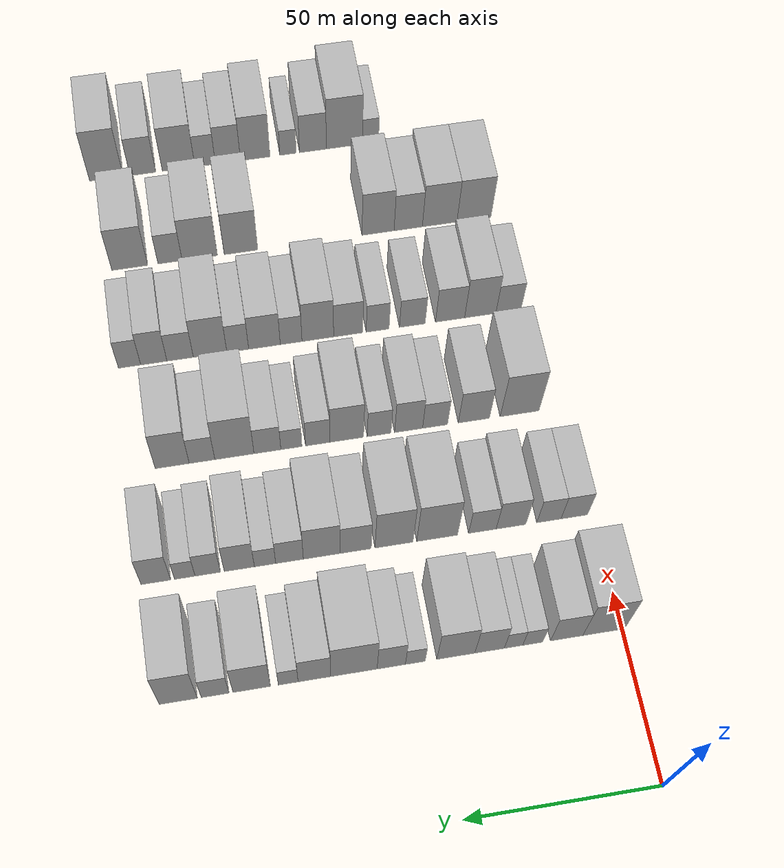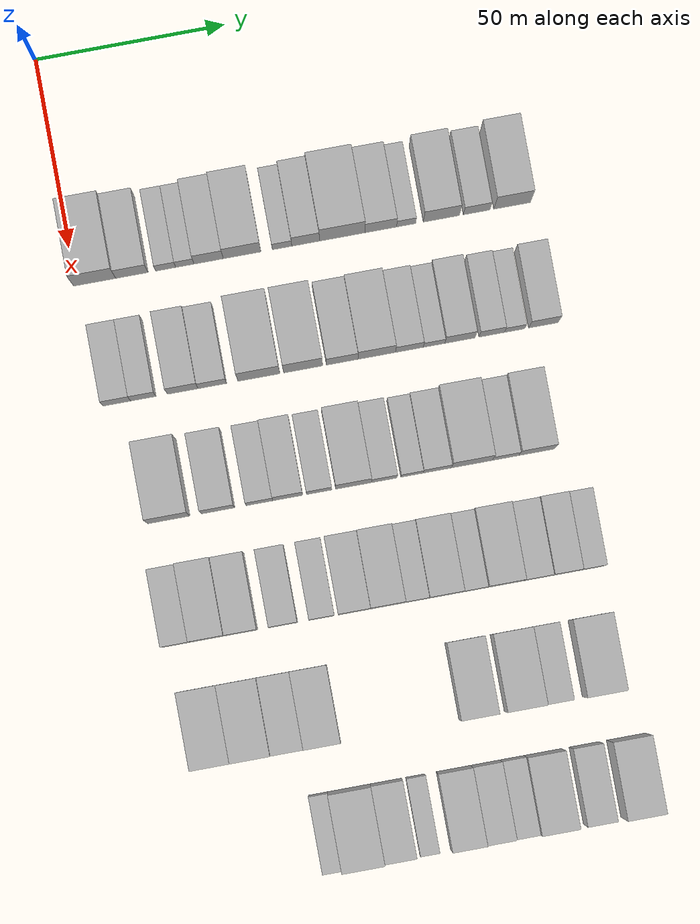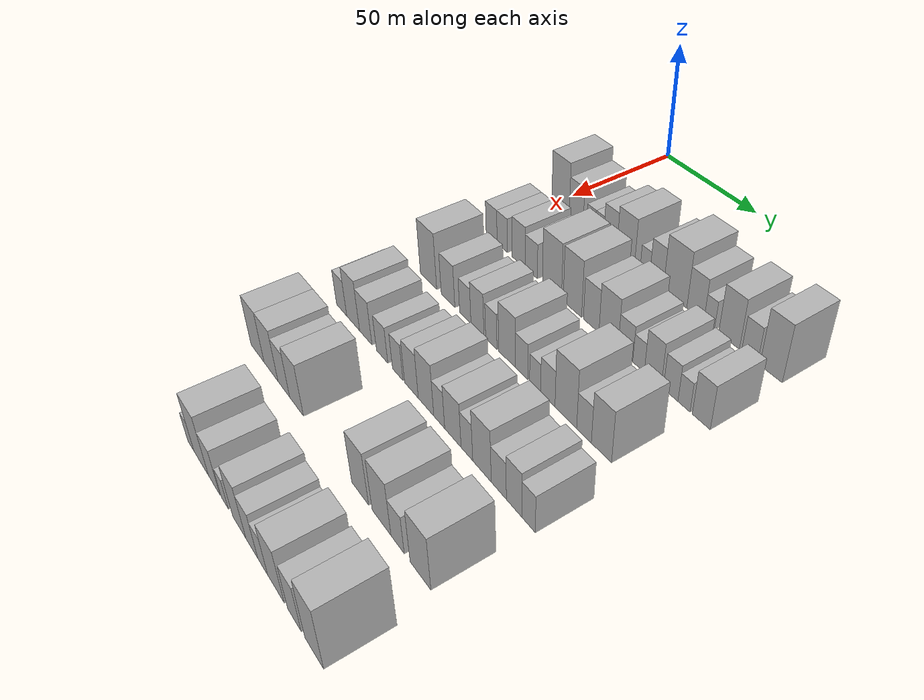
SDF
<sdf version="1.6">
 <world name="default">
  <model name="building_59">
   <static>1</static>
   <pose>50.0000 4.9649 0 0.000000 0.000000 0.000000</pose>
   <link name="link">
    <pose>0 0 12.00 0 0 0</pose>
    <collision name="collision"><geometry><box><size>20.0000 11.0637 24.0000</size></box></geometry></collision>
    <visual name="visual">
     <cast_shadows>0</cast_shadows>
     <geometry><box><size>20.0000 11.0637 24.0000</size></box></geometry>
     <material>
      <script>
       <uri>model://HANNAS_wall/materials/scripts</uri>
       <uri>model://HANNAS_wall/materials/textures</uri>
       <name>vrc/HANNAS_wall</name>
      </script>
     </material>
    </visual>
   </link>
  </model>
  <model name="building_60">
   <static>1</static>
   <pose>50.0000 14.7517 0 0.000000 0.000000 0.000000</pose>
   <link name="link">
    <pose>0 0 9.00 0 0 0</pose>
    <collision name="collision"><geometry><box><size>20.0000 8.5100 18.0000</size></box></geometry></collision>
    <visual name="visual">
     <cast_shadows>0</cast_shadows>
     <geometry><box><size>20.0000 8.5100 18.0000</size></box></geometry>
     <material>
      <script>
       <uri>model://HANNAS_wall/materials/scripts</uri>
       <uri>model://HANNAS_wall/materials/textures</uri>
       <name>vrc/HANNAS_wall</name>
      </script>
     </material>
    </visual>
   </link>
  </model>
  <model name="building_61">
   <static>1</static>
   <pose>50.0000 23.6273 0 0.000000 0.000000 0.000000</pose>
   <link name="link">
    <pose>0 0 6.00 0 0 0</pose>
    <collision name="collision"><geometry><box><size>20.0000 5.2412 12.0000</size></box></geometry></collision>
    <visual name="visual">
     <cast_shadows>0</cast_shadows>
     <geometry><box><size>20.0000 5.2412 12.0000</size></box></geometry>
     <material>
      <script>
       <uri>model://HANNAS_wall/materials/scripts</uri>
       <uri>model://HANNAS_wall/materials/textures</uri>
       <name>vrc/HANNAS_wall</name>
      </script>
     </material>
    </visual>
   </link>
  </model>
  <model name="building_62">
   <static>1</static>
   <pose>50.0000 28.6584 0 0.000000 0.000000 0.000000</pose>
   <link name="link">
    <pose>0 0 6.00 0 0 0</pose>
    <collision name="collision"><geometry><box><size>20.0000 4.8211 12.0000</size></box></geometry></collision>
    <visual name="visual">
     <cast_shadows>0</cast_shadows>
     <geometry><box><size>20.0000 4.8211 12.0000</size></box></geometry>
     <material>
      <script>
       <uri>model://HANNAS_wall/materials/scripts</uri>
       <uri>model://HANNAS_wall/materials/textures</uri>
       <name>vrc/HANNAS_wall</name>
      </script>
     </material>
    </visual>
   </link>
  </model>
  <model name="building_63">
   <static>1</static>
   <pose>50.0000 34.9155 0 0.000000 0.000000 0.000000</pose>
   <link name="link">
    <pose>0 0 9.00 0 0 0</pose>
    <collision name="collision"><geometry><box><size>20.0000 7.6932 18.0000</size></box></geometry></collision>
    <visual name="visual">
     <cast_shadows>0</cast_shadows>
     <geometry><box><size>20.0000 7.6932 18.0000</size></box></geometry>
     <material>
      <script>
       <uri>model://HANNAS_wall/materials/scripts</uri>
       <uri>model://HANNAS_wall/materials/textures</uri>
       <name>vrc/HANNAS_wall</name>
      </script>
     </material>
    </visual>
   </link>
  </model>
  <model name="building_64">
   <static>1</static>
   <pose>50.0000 43.7048 0 0.000000 0.000000 0.000000</pose>
   <link name="link">
    <pose>0 0 10.50 0 0 0</pose>
    <collision name="collision"><geometry><box><size>20.0000 9.8854 21.0000</size></box></geometry></collision>
    <visual name="visual">
     <cast_shadows>0</cast_shadows>
     <geometry><box><size>20.0000 9.8854 21.0000</size></box></geometry>
     <material>
      <script>
       <uri>model://HANNAS_wall/materials/scripts</uri>
       <uri>model://HANNAS_wall/materials/textures</uri>
       <name>vrc/HANNAS_wall</name>
      </script>
     </material>
    </visual>
   </link>
  </model>
  <model name="building_65">
   <static>1</static>
   <pose>50.0000 54.2093 0 0.000000 0.000000 0.000000</pose>
   <link name="link">
    <pose>0 0 6.00 0 0 0</pose>
    <collision name="collision"><geometry><box><size>20.0000 5.1238 12.0000</size></box></geometry></collision>
    <visual name="visual">
     <cast_shadows>0</cast_shadows>
     <geometry><box><size>20.0000 5.1238 12.0000</size></box></geometry>
     <material>
      <script>
       <uri>model://HANNAS_wall/materials/scripts</uri>
       <uri>model://HANNAS_wall/materials/textures</uri>
       <name>vrc/HANNAS_wall</name>
      </script>
     </material>
    </visual>
   </link>
  </model>
  <model name="building_66">
   <static>1</static>
   <pose>50.0000 60.4155 0 0.000000 0.000000 0.000000</pose>
   <link name="link">
    <pose>0 0 9.00 0 0 0</pose>
    <collision name="collision"><geometry><box><size>20.0000 7.2885 18.0000</size></box></geometry></collision>
    <visual name="visual">
     <cast_shadows>0</cast_shadows>
     <geometry><box><size>20.0000 7.2885 18.0000</size></box></geometry>
     <material>
      <script>
       <uri>model://HANNAS_wall/materials/scripts</uri>
       <uri>model://HANNAS_wall/materials/textures</uri>
       <name>vrc/HANNAS_wall</name>
      </script>
     </material>
    </visual>
   </link>
  </model>
  <model name="building_67">
   <static>1</static>
   <pose>50.0000 70.0299 0 0.000000 0.000000 0.000000</pose>
   <link name="link">
    <pose>0 0 12.00 0 0 0</pose>
    <collision name="collision"><geometry><box><size>20.0000 11.9403 24.0000</size></box></geometry></collision>
    <visual name="visual">
     <cast_shadows>0</cast_shadows>
     <geometry><box><size>20.0000 11.9403 24.0000</size></box></geometry>
     <material>
      <script>
       <uri>model://HANNAS_wall/materials/scripts</uri>
       <uri>model://HANNAS_wall/materials/textures</uri>
       <name>vrc/HANNAS_wall</name>
      </script>
     </material>
    </visual>
   </link>
  </model>
  <model name="building_68">
   <static>1</static>
   <pose>50.0000 80.1662 0 0.000000 0.000000 0.000000</pose>
   <link name="link">
    <pose>0 0 9.00 0 0 0</pose>
    <collision name="collision"><geometry><box><size>20.0000 8.3323 18.0000</size></box></geometry></collision>
    <visual name="visual">
     <cast_shadows>0</cast_shadows>
     <geometry><box><size>20.0000 8.3323 18.0000</size></box></geometry>
     <material>
      <script>
       <uri>model://HANNAS_wall/materials/scripts</uri>
       <uri>model://HANNAS_wall/materials/textures</uri>
       <name>vrc/HANNAS_wall</name>
      </script>
     </material>
    </visual>
   </link>
  </model>
  <model name="building_69">
   <static>1</static>
   <pose>50.0000 86.8521 0 0.000000 0.000000 0.000000</pose>
   <link name="link">
    <pose>0 0 6.00 0 0 0</pose>
    <collision name="collision"><geometry><box><size>20.0000 5.0395 12.0000</size></box></geometry></collision>
    <visual name="visual">
     <cast_shadows>0</cast_shadows>
     <geometry><box><size>20.0000 5.0395 12.0000</size></box></geometry>
     <material>
      <script>
       <uri>model://HANNAS_wall/materials/scripts</uri>
       <uri>model://HANNAS_wall/materials/textures</uri>
       <name>vrc/HANNAS_wall</name>
      </script>
     </material>
    </visual>
   </link>
  </model>
  <model name="building_70">
   <static>1</static>
   <pose>50.0000 96.1407 0 0.000000 0.000000 0.000000</pose>
   <link name="link">
    <pose>0 0 10.50 0 0 0</pose>
    <collision name="collision"><geometry><box><size>20.0000 9.5376 21.0000</size></box></geometry></collision>
    <visual name="visual">
     <cast_shadows>0</cast_shadows>
     <geometry><box><size>20.0000 9.5376 21.0000</size></box></geometry>
     <material>
      <script>
       <uri>model://HANNAS_wall/materials/scripts</uri>
       <uri>model://HANNAS_wall/materials/textures</uri>
       <name>vrc/HANNAS_wall</name>
      </script>
     </material>
    </visual>
   </link>
  </model>
  <model name="building_71">
   <static>1</static>
   <pose>50.0000 105.4205 0 0.000000 0.000000 0.000000</pose>
   <link name="link">
    <pose>0 0 7.50 0 0 0</pose>
    <collision name="collision"><geometry><box><size>20.0000 7.0220 15.0000</size></box></geometry></collision>
    <visual name="visual">
     <cast_shadows>0</cast_shadows>
     <geometry><box><size>20.0000 7.0220 15.0000</size></box></geometry>
     <material>
      <script>
       <uri>model://HANNAS_wall/materials/scripts</uri>
       <uri>model://HANNAS_wall/materials/textures</uri>
       <name>vrc/HANNAS_wall</name>
      </script>
     </material>
    </visual>
   </link>
  </model>
  <model name="building_72">
   <static>1</static>
   <pose>50.0000 114.7518 0 0.000000 0.000000 0.000000</pose>
   <link name="link">
    <pose>0 0 12.00 0 0 0</pose>
    <collision name="collision"><geometry><box><size>20.0000 9.6407 24.0000</size></box></geometry></collision>
    <visual name="visual">
     <cast_shadows>0</cast_shadows>
     <geometry><box><size>20.0000 9.6407 24.0000</size></box></geometry>
     <material>
      <script>
       <uri>model://HANNAS_wall/materials/scripts</uri>
       <uri>model://HANNAS_wall/materials/textures</uri>
       <name>vrc/HANNAS_wall</name>
      </script>
     </material>
    </visual>
   </link>
  </model>
  <model name="building_186">
   <static>1</static>
   <pose>82.0000 5.0773 0 0.000000 0.000000 0.000000</pose>
   <link name="link">
    <pose>0 0 7.50 0 0 0</pose>
    <collision name="collision"><geometry><box><size>20.0000 7.2339 15.0000</size></box></geometry></collision>
    <visual name="visual">
     <cast_shadows>0</cast_shadows>
     <geometry><box><size>20.0000 7.2339 15.0000</size></box></geometry>
     <material>
      <script>
       <uri>model://HANNAS_wall/materials/scripts</uri>
       <uri>model://HANNAS_wall/materials/textures</uri>
       <name>vrc/HANNAS_wall</name>
      </script>
     </material>
    </visual>
   </link>
  </model>
  <model name="building_187">
   <static>1</static>
   <pose>82.0000 12.0034 0 0.000000 0.000000 0.000000</pose>
   <link name="link">
    <pose>0 0 7.50 0 0 0</pose>
    <collision name="collision"><geometry><box><size>20.0000 6.6184 15.0000</size></box></geometry></collision>
    <visual name="visual">
     <cast_shadows>0</cast_shadows>
     <geometry><box><size>20.0000 6.6184 15.0000</size></box></geometry>
     <material>
      <script>
       <uri>model://HANNAS_wall/materials/scripts</uri>
       <uri>model://HANNAS_wall/materials/textures</uri>
       <name>vrc/HANNAS_wall</name>
      </script>
     </material>
    </visual>
   </link>
  </model>
  <model name="building_188">
   <static>1</static>
   <pose>82.0000 22.3390 0 0.000000 0.000000 0.000000</pose>
   <link name="link">
    <pose>0 0 9.00 0 0 0</pose>
    <collision name="collision"><geometry><box><size>20.0000 8.0528 18.0000</size></box></geometry></collision>
    <visual name="visual">
     <cast_shadows>0</cast_shadows>
     <geometry><box><size>20.0000 8.0528 18.0000</size></box></geometry>
     <material>
      <script>
       <uri>model://HANNAS_wall/materials/scripts</uri>
       <uri>model://HANNAS_wall/materials/textures</uri>
       <name>vrc/HANNAS_wall</name>
      </script>
     </material>
    </visual>
   </link>
  </model>
  <model name="building_189">
   <static>1</static>
   <pose>82.0000 30.0908 0 0.000000 0.000000 0.000000</pose>
   <link name="link">
    <pose>0 0 7.50 0 0 0</pose>
    <collision name="collision"><geometry><box><size>20.0000 7.4508 15.0000</size></box></geometry></collision>
    <visual name="visual">
     <cast_shadows>0</cast_shadows>
     <geometry><box><size>20.0000 7.4508 15.0000</size></box></geometry>
     <material>
      <script>
       <uri>model://HANNAS_wall/materials/scripts</uri>
       <uri>model://HANNAS_wall/materials/textures</uri>
       <name>vrc/HANNAS_wall</name>
      </script>
     </material>
    </visual>
   </link>
  </model>
  <model name="building_190">
   <static>1</static>
   <pose>82.0000 42.3090 0 0.000000 0.000000 0.000000</pose>
   <link name="link">
    <pose>0 0 12.00 0 0 0</pose>
    <collision name="collision"><geometry><box><size>20.0000 10.9856 24.0000</size></box></geometry></collision>
    <visual name="visual">
     <cast_shadows>0</cast_shadows>
     <geometry><box><size>20.0000 10.9856 24.0000</size></box></geometry>
     <material>
      <script>
       <uri>model://HANNAS_wall/materials/scripts</uri>
       <uri>model://HANNAS_wall/materials/textures</uri>
       <name>vrc/HANNAS_wall</name>
      </script>
     </material>
    </visual>
   </link>
  </model>
  <model name="building_191">
   <static>1</static>
   <pose>82.0000 53.9053 0 0.000000 0.000000 0.000000</pose>
   <link name="link">
    <pose>0 0 12.00 0 0 0</pose>
    <collision name="collision"><geometry><box><size>20.0000 10.2070 24.0000</size></box></geometry></collision>
    <visual name="visual">
     <cast_shadows>0</cast_shadows>
     <geometry><box><size>20.0000 10.2070 24.0000</size></box></geometry>
     <material>
      <script>
       <uri>model://HANNAS_wall/materials/scripts</uri>
       <uri>model://HANNAS_wall/materials/textures</uri>
       <name>vrc/HANNAS_wall</name>
      </script>
     </material>
    </visual>
   </link>
  </model>
  <model name="building_192">
   <static>1</static>
   <pose>82.0000 64.1452 0 0.000000 0.000000 0.000000</pose>
   <link name="link">
    <pose>0 0 9.00 0 0 0</pose>
    <collision name="collision"><geometry><box><size>20.0000 8.2730 18.0000</size></box></geometry></collision>
    <visual name="visual">
     <cast_shadows>0</cast_shadows>
     <geometry><box><size>20.0000 8.2730 18.0000</size></box></geometry>
     <material>
      <script>
       <uri>model://HANNAS_wall/materials/scripts</uri>
       <uri>model://HANNAS_wall/materials/textures</uri>
       <name>vrc/HANNAS_wall</name>
      </script>
     </material>
    </visual>
   </link>
  </model>
  <model name="building_193">
   <static>1</static>
   <pose>82.0000 73.1974 0 0.000000 0.000000 0.000000</pose>
   <link name="link">
    <pose>0 0 10.50 0 0 0</pose>
    <collision name="collision"><geometry><box><size>20.0000 9.8314 21.0000</size></box></geometry></collision>
    <visual name="visual">
     <cast_shadows>0</cast_shadows>
     <geometry><box><size>20.0000 9.8314 21.0000</size></box></geometry>
     <material>
      <script>
       <uri>model://HANNAS_wall/materials/scripts</uri>
       <uri>model://HANNAS_wall/materials/textures</uri>
       <name>vrc/HANNAS_wall</name>
      </script>
     </material>
    </visual>
   </link>
  </model>
  <model name="building_194">
   <static>1</static>
   <pose>82.0000 81.7735 0 0.000000 0.000000 0.000000</pose>
   <link name="link">
    <pose>0 0 7.50 0 0 0</pose>
    <collision name="collision"><geometry><box><size>20.0000 7.3209 15.0000</size></box></geometry></collision>
    <visual name="visual">
     <cast_shadows>0</cast_shadows>
     <geometry><box><size>20.0000 7.3209 15.0000</size></box></geometry>
     <material>
      <script>
       <uri>model://HANNAS_wall/materials/scripts</uri>
       <uri>model://HANNAS_wall/materials/textures</uri>
       <name>vrc/HANNAS_wall</name>
      </script>
     </material>
    </visual>
   </link>
  </model>
  <model name="building_195">
   <static>1</static>
   <pose>82.0000 88.2553 0 0.000000 0.000000 0.000000</pose>
   <link name="link">
    <pose>0 0 6.00 0 0 0</pose>
    <collision name="collision"><geometry><box><size>20.0000 5.6426 12.0000</size></box></geometry></collision>
    <visual name="visual">
     <cast_shadows>0</cast_shadows>
     <geometry><box><size>20.0000 5.6426 12.0000</size></box></geometry>
     <material>
      <script>
       <uri>model://HANNAS_wall/materials/scripts</uri>
       <uri>model://HANNAS_wall/materials/textures</uri>
       <name>vrc/HANNAS_wall</name>
      </script>
     </material>
    </visual>
   </link>
  </model>
  <model name="building_196">
   <static>1</static>
   <pose>82.0000 95.0595 0 0.000000 0.000000 0.000000</pose>
   <link name="link">
    <pose>0 0 9.00 0 0 0</pose>
    <collision name="collision"><geometry><box><size>20.0000 7.9658 18.0000</size></box></geometry></collision>
    <visual name="visual">
     <cast_shadows>0</cast_shadows>
     <geometry><box><size>20.0000 7.9658 18.0000</size></box></geometry>
     <material>
      <script>
       <uri>model://HANNAS_wall/materials/scripts</uri>
       <uri>model://HANNAS_wall/materials/textures</uri>
       <name>vrc/HANNAS_wall</name>
      </script>
     </material>
    </visual>
   </link>
  </model>
  <model name="building_197">
   <static>1</static>
   <pose>82.0000 103.3854 0 0.000000 0.000000 0.000000</pose>
   <link name="link">
    <pose>0 0 7.50 0 0 0</pose>
    <collision name="collision"><geometry><box><size>20.0000 6.6859 15.0000</size></box></geometry></collision>
    <visual name="visual">
     <cast_shadows>0</cast_shadows>
     <geometry><box><size>20.0000 6.6859 15.0000</size></box></geometry>
     <material>
      <script>
       <uri>model://HANNAS_wall/materials/scripts</uri>
       <uri>model://HANNAS_wall/materials/textures</uri>
       <name>vrc/HANNAS_wall</name>
      </script>
     </material>
    </visual>
   </link>
  </model>
  <model name="building_198">
   <static>1</static>
   <pose>82.0000 109.4235 0 0.000000 0.000000 0.000000</pose>
   <link name="link">
    <pose>0 0 6.00 0 0 0</pose>
    <collision name="collision"><geometry><box><size>20.0000 5.3903 12.0000</size></box></geometry></collision>
    <visual name="visual">
     <cast_shadows>0</cast_shadows>
     <geometry><box><size>20.0000 5.3903 12.0000</size></box></geometry>
     <material>
      <script>
       <uri>model://HANNAS_wall/materials/scripts</uri>
       <uri>model://HANNAS_wall/materials/textures</uri>
       <name>vrc/HANNAS_wall</name>
      </script>
     </material>
    </visual>
   </link>
  </model>
  <model name="building_199">
   <static>1</static>
   <pose>82.0000 117.0050 0 0.000000 0.000000 0.000000</pose>
   <link name="link">
    <pose>0 0 9.00 0 0 0</pose>
    <collision name="collision"><geometry><box><size>20.0000 7.7727 18.0000</size></box></geometry></collision>
    <visual name="visual">
     <cast_shadows>0</cast_shadows>
     <geometry><box><size>20.0000 7.7727 18.0000</size></box></geometry>
     <material>
      <script>
       <uri>model://HANNAS_wall/materials/scripts</uri>
       <uri>model://HANNAS_wall/materials/textures</uri>
       <name>vrc/HANNAS_wall</name>
      </script>
     </material>
    </visual>
   </link>
  </model>
  <model name="building_310">
   <static>1</static>
   <pose>114.0000 12.9162 0 0.000000 0.000000 0.000000</pose>
   <link name="link">
    <pose>0 0 12.00 0 0 0</pose>
    <collision name="collision"><geometry><box><size>20.0000 10.9552 24.0000</size></box></geometry></collision>
    <visual name="visual">
     <cast_shadows>0</cast_shadows>
     <geometry><box><size>20.0000 10.9552 24.0000</size></box></geometry>
     <material>
      <script>
       <uri>model://HANNAS_wall/materials/scripts</uri>
       <uri>model://HANNAS_wall/materials/textures</uri>
       <name>vrc/HANNAS_wall</name>
      </script>
     </material>
    </visual>
   </link>
  </model>
  <model name="building_311">
   <static>1</static>
   <pose>114.0000 25.7719 0 0.000000 0.000000 0.000000</pose>
   <link name="link">
    <pose>0 0 9.00 0 0 0</pose>
    <collision name="collision"><geometry><box><size>20.0000 8.7561 18.0000</size></box></geometry></collision>
    <visual name="visual">
     <cast_shadows>0</cast_shadows>
     <geometry><box><size>20.0000 8.7561 18.0000</size></box></geometry>
     <material>
      <script>
       <uri>model://HANNAS_wall/materials/scripts</uri>
       <uri>model://HANNAS_wall/materials/textures</uri>
       <name>vrc/HANNAS_wall</name>
      </script>
     </material>
    </visual>
   </link>
  </model>
  <model name="building_312">
   <static>1</static>
   <pose>114.0000 36.6454 0 0.000000 0.000000 0.000000</pose>
   <link name="link">
    <pose>0 0 7.50 0 0 0</pose>
    <collision name="collision"><geometry><box><size>20.0000 6.9907 15.0000</size></box></geometry></collision>
    <visual name="visual">
     <cast_shadows>0</cast_shadows>
     <geometry><box><size>20.0000 6.9907 15.0000</size></box></geometry>
     <material>
      <script>
       <uri>model://HANNAS_wall/materials/scripts</uri>
       <uri>model://HANNAS_wall/materials/textures</uri>
       <name>vrc/HANNAS_wall</name>
      </script>
     </material>
    </visual>
   </link>
  </model>
  <model name="building_313">
   <static>1</static>
   <pose>114.0000 44.0419 0 0.000000 0.000000 0.000000</pose>
   <link name="link">
    <pose>0 0 9.00 0 0 0</pose>
    <collision name="collision"><geometry><box><size>20.0000 7.8024 18.0000</size></box></geometry></collision>
    <visual name="visual">
     <cast_shadows>0</cast_shadows>
     <geometry><box><size>20.0000 7.8024 18.0000</size></box></geometry>
     <material>
      <script>
       <uri>model://HANNAS_wall/materials/scripts</uri>
       <uri>model://HANNAS_wall/materials/textures</uri>
       <name>vrc/HANNAS_wall</name>
      </script>
     </material>
    </visual>
   </link>
  </model>
  <model name="building_314">
   <static>1</static>
   <pose>114.0000 52.2488 0 0.000000 0.000000 0.000000</pose>
   <link name="link">
    <pose>0 0 7.50 0 0 0</pose>
    <collision name="collision"><geometry><box><size>20.0000 6.6114 15.0000</size></box></geometry></collision>
    <visual name="visual">
     <cast_shadows>0</cast_shadows>
     <geometry><box><size>20.0000 6.6114 15.0000</size></box></geometry>
     <material>
      <script>
       <uri>model://HANNAS_wall/materials/scripts</uri>
       <uri>model://HANNAS_wall/materials/textures</uri>
       <name>vrc/HANNAS_wall</name>
      </script>
     </material>
    </visual>
   </link>
  </model>
  <model name="building_315">
   <static>1</static>
   <pose>114.0000 61.2189 0 0.000000 0.000000 0.000000</pose>
   <link name="link">
    <pose>0 0 10.50 0 0 0</pose>
    <collision name="collision"><geometry><box><size>20.0000 9.3288 21.0000</size></box></geometry></collision>
    <visual name="visual">
     <cast_shadows>0</cast_shadows>
     <geometry><box><size>20.0000 9.3288 21.0000</size></box></geometry>
     <material>
      <script>
       <uri>model://HANNAS_wall/materials/scripts</uri>
       <uri>model://HANNAS_wall/materials/textures</uri>
       <name>vrc/HANNAS_wall</name>
      </script>
     </material>
    </visual>
   </link>
  </model>
  <model name="building_316">
   <static>1</static>
   <pose>114.0000 69.2472 0 0.000000 0.000000 0.000000</pose>
   <link name="link">
    <pose>0 0 7.50 0 0 0</pose>
    <collision name="collision"><geometry><box><size>20.0000 6.7278 15.0000</size></box></geometry></collision>
    <visual name="visual">
     <cast_shadows>0</cast_shadows>
     <geometry><box><size>20.0000 6.7278 15.0000</size></box></geometry>
     <material>
      <script>
       <uri>model://HANNAS_wall/materials/scripts</uri>
       <uri>model://HANNAS_wall/materials/textures</uri>
       <name>vrc/HANNAS_wall</name>
      </script>
     </material>
    </visual>
   </link>
  </model>
  <model name="building_317">
   <static>1</static>
   <pose>114.0000 76.5184 0 0.000000 0.000000 0.000000</pose>
   <link name="link">
    <pose>0 0 6.00 0 0 0</pose>
    <collision name="collision"><geometry><box><size>20.0000 5.8146 12.0000</size></box></geometry></collision>
    <visual name="visual">
     <cast_shadows>0</cast_shadows>
     <geometry><box><size>20.0000 5.8146 12.0000</size></box></geometry>
     <material>
      <script>
       <uri>model://HANNAS_wall/materials/scripts</uri>
       <uri>model://HANNAS_wall/materials/textures</uri>
       <name>vrc/HANNAS_wall</name>
      </script>
     </material>
    </visual>
   </link>
  </model>
  <model name="building_318">
   <static>1</static>
   <pose>114.0000 83.1107 0 0.000000 0.000000 0.000000</pose>
   <link name="link">
    <pose>0 0 7.50 0 0 0</pose>
    <collision name="collision"><geometry><box><size>20.0000 7.3700 15.0000</size></box></geometry></collision>
    <visual name="visual">
     <cast_shadows>0</cast_shadows>
     <geometry><box><size>20.0000 7.3700 15.0000</size></box></geometry>
     <material>
      <script>
       <uri>model://HANNAS_wall/materials/scripts</uri>
       <uri>model://HANNAS_wall/materials/textures</uri>
       <name>vrc/HANNAS_wall</name>
      </script>
     </material>
    </visual>
   </link>
  </model>
  <model name="building_319">
   <static>1</static>
   <pose>114.0000 92.1587 0 0.000000 0.000000 0.000000</pose>
   <link name="link">
    <pose>0 0 12.00 0 0 0</pose>
    <collision name="collision"><geometry><box><size>20.0000 10.7260 24.0000</size></box></geometry></collision>
    <visual name="visual">
     <cast_shadows>0</cast_shadows>
     <geometry><box><size>20.0000 10.7260 24.0000</size></box></geometry>
     <material>
      <script>
       <uri>model://HANNAS_wall/materials/scripts</uri>
       <uri>model://HANNAS_wall/materials/textures</uri>
       <name>vrc/HANNAS_wall</name>
      </script>
     </material>
    </visual>
   </link>
  </model>
  <model name="building_320">
   <static>1</static>
   <pose>114.0000 101.0173 0 0.000000 0.000000 0.000000</pose>
   <link name="link">
    <pose>0 0 7.50 0 0 0</pose>
    <collision name="collision"><geometry><box><size>20.0000 6.9913 15.0000</size></box></geometry></collision>
    <visual name="visual">
     <cast_shadows>0</cast_shadows>
     <geometry><box><size>20.0000 6.9913 15.0000</size></box></geometry>
     <material>
      <script>
       <uri>model://HANNAS_wall/materials/scripts</uri>
       <uri>model://HANNAS_wall/materials/textures</uri>
       <name>vrc/HANNAS_wall</name>
      </script>
     </material>
    </visual>
   </link>
  </model>
  <model name="building_321">
   <static>1</static>
   <pose>114.0000 109.1560 0 0.000000 0.000000 0.000000</pose>
   <link name="link">
    <pose>0 0 10.50 0 0 0</pose>
    <collision name="collision"><geometry><box><size>20.0000 9.2860 21.0000</size></box></geometry></collision>
    <visual name="visual">
     <cast_shadows>0</cast_shadows>
     <geometry><box><size>20.0000 9.2860 21.0000</size></box></geometry>
     <material>
      <script>
       <uri>model://HANNAS_wall/materials/scripts</uri>
       <uri>model://HANNAS_wall/materials/textures</uri>
       <name>vrc/HANNAS_wall</name>
      </script>
     </material>
    </visual>
   </link>
  </model>
  <model name="building_427">
   <static>1</static>
   <pose>146.0000 9.1000 0 0.000000 0.000000 0.000000</pose>
   <link name="link">
    <pose>0 0 7.50 0 0 0</pose>
    <collision name="collision"><geometry><box><size>20.0000 7.3515 15.0000</size></box></geometry></collision>
    <visual name="visual">
     <cast_shadows>0</cast_shadows>
     <geometry><box><size>20.0000 7.3515 15.0000</size></box></geometry>
     <material>
      <script>
       <uri>model://HANNAS_wall/materials/scripts</uri>
       <uri>model://HANNAS_wall/materials/textures</uri>
       <name>vrc/HANNAS_wall</name>
      </script>
     </material>
    </visual>
   </link>
  </model>
  <model name="building_428">
   <static>1</static>
   <pose>146.0000 17.3188 0 0.000000 0.000000 0.000000</pose>
   <link name="link">
    <pose>0 0 10.50 0 0 0</pose>
    <collision name="collision"><geometry><box><size>20.0000 9.0862 21.0000</size></box></geometry></collision>
    <visual name="visual">
     <cast_shadows>0</cast_shadows>
     <geometry><box><size>20.0000 9.0862 21.0000</size></box></geometry>
     <material>
      <script>
       <uri>model://HANNAS_wall/materials/scripts</uri>
       <uri>model://HANNAS_wall/materials/textures</uri>
       <name>vrc/HANNAS_wall</name>
      </script>
     </material>
    </visual>
   </link>
  </model>
  <model name="building_429">
   <static>1</static>
   <pose>146.0000 26.0867 0 0.000000 0.000000 0.000000</pose>
   <link name="link">
    <pose>0 0 9.00 0 0 0</pose>
    <collision name="collision"><geometry><box><size>20.0000 8.4495 18.0000</size></box></geometry></collision>
    <visual name="visual">
     <cast_shadows>0</cast_shadows>
     <geometry><box><size>20.0000 8.4495 18.0000</size></box></geometry>
     <material>
      <script>
       <uri>model://HANNAS_wall/materials/scripts</uri>
       <uri>model://HANNAS_wall/materials/textures</uri>
       <name>vrc/HANNAS_wall</name>
      </script>
     </material>
    </visual>
   </link>
  </model>
  <model name="building_430">
   <static>1</static>
   <pose>146.0000 37.0280 0 0.000000 0.000000 0.000000</pose>
   <link name="link">
    <pose>0 0 7.50 0 0 0</pose>
    <collision name="collision"><geometry><box><size>20.0000 7.4332 15.0000</size></box></geometry></collision>
    <visual name="visual">
     <cast_shadows>0</cast_shadows>
     <geometry><box><size>20.0000 7.4332 15.0000</size></box></geometry>
     <material>
      <script>
       <uri>model://HANNAS_wall/materials/scripts</uri>
       <uri>model://HANNAS_wall/materials/textures</uri>
       <name>vrc/HANNAS_wall</name>
      </script>
     </material>
    </visual>
   </link>
  </model>
  <model name="building_431">
   <static>1</static>
   <pose>146.0000 47.0378 0 0.000000 0.000000 0.000000</pose>
   <link name="link">
    <pose>0 0 7.50 0 0 0</pose>
    <collision name="collision"><geometry><box><size>20.0000 6.5865 15.0000</size></box></geometry></collision>
    <visual name="visual">
     <cast_shadows>0</cast_shadows>
     <geometry><box><size>20.0000 6.5865 15.0000</size></box></geometry>
     <material>
      <script>
       <uri>model://HANNAS_wall/materials/scripts</uri>
       <uri>model://HANNAS_wall/materials/textures</uri>
       <name>vrc/HANNAS_wall</name>
      </script>
     </material>
    </visual>
   </link>
  </model>
  <model name="building_432">
   <static>1</static>
   <pose>146.0000 55.5057 0 0.000000 0.000000 0.000000</pose>
   <link name="link">
    <pose>0 0 9.00 0 0 0</pose>
    <collision name="collision"><geometry><box><size>20.0000 8.3493 18.0000</size></box></geometry></collision>
    <visual name="visual">
     <cast_shadows>0</cast_shadows>
     <geometry><box><size>20.0000 8.3493 18.0000</size></box></geometry>
     <material>
      <script>
       <uri>model://HANNAS_wall/materials/scripts</uri>
       <uri>model://HANNAS_wall/materials/textures</uri>
       <name>vrc/HANNAS_wall</name>
      </script>
     </material>
    </visual>
   </link>
  </model>
  <model name="building_433">
   <static>1</static>
   <pose>146.0000 64.2059 0 0.000000 0.000000 0.000000</pose>
   <link name="link">
    <pose>0 0 10.50 0 0 0</pose>
    <collision name="collision"><geometry><box><size>20.0000 9.0511 21.0000</size></box></geometry></collision>
    <visual name="visual">
     <cast_shadows>0</cast_shadows>
     <geometry><box><size>20.0000 9.0511 21.0000</size></box></geometry>
     <material>
      <script>
       <uri>model://HANNAS_wall/materials/scripts</uri>
       <uri>model://HANNAS_wall/materials/textures</uri>
       <name>vrc/HANNAS_wall</name>
      </script>
     </material>
    </visual>
   </link>
  </model>
  <model name="building_434">
   <static>1</static>
   <pose>146.0000 71.8302 0 0.000000 0.000000 0.000000</pose>
   <link name="link">
    <pose>0 0 7.50 0 0 0</pose>
    <collision name="collision"><geometry><box><size>20.0000 6.1977 15.0000</size></box></geometry></collision>
    <visual name="visual">
     <cast_shadows>0</cast_shadows>
     <geometry><box><size>20.0000 6.1977 15.0000</size></box></geometry>
     <material>
      <script>
       <uri>model://HANNAS_wall/materials/scripts</uri>
       <uri>model://HANNAS_wall/materials/textures</uri>
       <name>vrc/HANNAS_wall</name>
      </script>
     </material>
    </visual>
   </link>
  </model>
  <model name="building_435">
   <static>1</static>
   <pose>146.0000 79.4287 0 0.000000 0.000000 0.000000</pose>
   <link name="link">
    <pose>0 0 9.00 0 0 0</pose>
    <collision name="collision"><geometry><box><size>20.0000 8.9993 18.0000</size></box></geometry></collision>
    <visual name="visual">
     <cast_shadows>0</cast_shadows>
     <geometry><box><size>20.0000 8.9993 18.0000</size></box></geometry>
     <material>
      <script>
       <uri>model://HANNAS_wall/materials/scripts</uri>
       <uri>model://HANNAS_wall/materials/textures</uri>
       <name>vrc/HANNAS_wall</name>
      </script>
     </material>
    </visual>
   </link>
  </model>
  <model name="building_436">
   <static>1</static>
   <pose>146.0000 87.0224 0 0.000000 0.000000 0.000000</pose>
   <link name="link">
    <pose>0 0 7.50 0 0 0</pose>
    <collision name="collision"><geometry><box><size>20.0000 6.1881 15.0000</size></box></geometry></collision>
    <visual name="visual">
     <cast_shadows>0</cast_shadows>
     <geometry><box><size>20.0000 6.1881 15.0000</size></box></geometry>
     <material>
      <script>
       <uri>model://HANNAS_wall/materials/scripts</uri>
       <uri>model://HANNAS_wall/materials/textures</uri>
       <name>vrc/HANNAS_wall</name>
      </script>
     </material>
    </visual>
   </link>
  </model>
  <model name="building_437">
   <static>1</static>
   <pose>146.0000 94.8695 0 0.000000 0.000000 0.000000</pose>
   <link name="link">
    <pose>0 0 10.50 0 0 0</pose>
    <collision name="collision"><geometry><box><size>20.0000 9.5061 21.0000</size></box></geometry></collision>
    <visual name="visual">
     <cast_shadows>0</cast_shadows>
     <geometry><box><size>20.0000 9.5061 21.0000</size></box></geometry>
     <material>
      <script>
       <uri>model://HANNAS_wall/materials/scripts</uri>
       <uri>model://HANNAS_wall/materials/textures</uri>
       <name>vrc/HANNAS_wall</name>
      </script>
     </material>
    </visual>
   </link>
  </model>
  <model name="building_438">
   <static>1</static>
   <pose>146.0000 103.3481 0 0.000000 0.000000 0.000000</pose>
   <link name="link">
    <pose>0 0 7.50 0 0 0</pose>
    <collision name="collision"><geometry><box><size>20.0000 7.4512 15.0000</size></box></geometry></collision>
    <visual name="visual">
     <cast_shadows>0</cast_shadows>
     <geometry><box><size>20.0000 7.4512 15.0000</size></box></geometry>
     <material>
      <script>
       <uri>model://HANNAS_wall/materials/scripts</uri>
       <uri>model://HANNAS_wall/materials/textures</uri>
       <name>vrc/HANNAS_wall</name>
      </script>
     </material>
    </visual>
   </link>
  </model>
  <model name="building_439">
   <static>1</static>
   <pose>146.0000 110.7657 0 0.000000 0.000000 0.000000</pose>
   <link name="link">
    <pose>0 0 9.00 0 0 0</pose>
    <collision name="collision"><geometry><box><size>20.0000 7.3841 18.0000</size></box></geometry></collision>
    <visual name="visual">
     <cast_shadows>0</cast_shadows>
     <geometry><box><size>20.0000 7.3841 18.0000</size></box></geometry>
     <material>
      <script>
       <uri>model://HANNAS_wall/materials/scripts</uri>
       <uri>model://HANNAS_wall/materials/textures</uri>
       <name>vrc/HANNAS_wall</name>
      </script>
     </material>
    </visual>
   </link>
  </model>
  <model name="building_440">
   <static>1</static>
   <pose>146.0000 117.5982 0 0.000000 0.000000 0.000000</pose>
   <link name="link">
    <pose>0 0 7.50 0 0 0</pose>
    <collision name="collision"><geometry><box><size>20.0000 6.2809 15.0000</size></box></geometry></collision>
    <visual name="visual">
     <cast_shadows>0</cast_shadows>
     <geometry><box><size>20.0000 6.2809 15.0000</size></box></geometry>
     <material>
      <script>
       <uri>model://HANNAS_wall/materials/scripts</uri>
       <uri>model://HANNAS_wall/materials/textures</uri>
       <name>vrc/HANNAS_wall</name>
      </script>
     </material>
    </visual>
   </link>
  </model>
  <model name="building_548">
   <static>1</static>
   <pose>178.0000 12.5255 0 0.000000 0.000000 0.000000</pose>
   <link name="link">
    <pose>0 0 10.50 0 0 0</pose>
    <collision name="collision"><geometry><box><size>20.0000 10.2312 21.0000</size></box></geometry></collision>
    <visual name="visual">
     <cast_shadows>0</cast_shadows>
     <geometry><box><size>20.0000 10.2312 21.0000</size></box></geometry>
     <material>
      <script>
       <uri>model://HANNAS_wall/materials/scripts</uri>
       <uri>model://HANNAS_wall/materials/textures</uri>
       <name>vrc/HANNAS_wall</name>
      </script>
     </material>
    </visual>
   </link>
  </model>
  <model name="building_549">
   <static>1</static>
   <pose>178.0000 22.8359 0 0.000000 0.000000 0.000000</pose>
   <link name="link">
    <pose>0 0 10.50 0 0 0</pose>
    <collision name="collision"><geometry><box><size>20.0000 10.3897 21.0000</size></box></geometry></collision>
    <visual name="visual">
     <cast_shadows>0</cast_shadows>
     <geometry><box><size>20.0000 10.3897 21.0000</size></box></geometry>
     <material>
      <script>
       <uri>model://HANNAS_wall/materials/scripts</uri>
       <uri>model://HANNAS_wall/materials/textures</uri>
       <name>vrc/HANNAS_wall</name>
      </script>
     </material>
    </visual>
   </link>
  </model>
  <model name="building_550">
   <static>1</static>
   <pose>178.0000 32.2639 0 0.000000 0.000000 0.000000</pose>
   <link name="link">
    <pose>0 0 9.00 0 0 0</pose>
    <collision name="collision"><geometry><box><size>20.0000 8.4664 18.0000</size></box></geometry></collision>
    <visual name="visual">
     <cast_shadows>0</cast_shadows>
     <geometry><box><size>20.0000 8.4664 18.0000</size></box></geometry>
     <material>
      <script>
       <uri>model://HANNAS_wall/materials/scripts</uri>
       <uri>model://HANNAS_wall/materials/textures</uri>
       <name>vrc/HANNAS_wall</name>
      </script>
     </material>
    </visual>
   </link>
  </model>
  <model name="building_551">
   <static>1</static>
   <pose>178.0000 41.2882 0 0.000000 0.000000 0.000000</pose>
   <link name="link">
    <pose>0 0 10.50 0 0 0</pose>
    <collision name="collision"><geometry><box><size>20.0000 9.5822 21.0000</size></box></geometry></collision>
    <visual name="visual">
     <cast_shadows>0</cast_shadows>
     <geometry><box><size>20.0000 9.5822 21.0000</size></box></geometry>
     <material>
      <script>
       <uri>model://HANNAS_wall/materials/scripts</uri>
       <uri>model://HANNAS_wall/materials/textures</uri>
       <name>vrc/HANNAS_wall</name>
      </script>
     </material>
    </visual>
   </link>
  </model>
  <model name="building_552">
   <static>1</static>
   <pose>178.0000 81.8633 0 0.000000 0.000000 0.000000</pose>
   <link name="link">
    <pose>0 0 10.50 0 0 0</pose>
    <collision name="collision"><geometry><box><size>20.0000 9.8560 21.0000</size></box></geometry></collision>
    <visual name="visual">
     <cast_shadows>0</cast_shadows>
     <geometry><box><size>20.0000 9.8560 21.0000</size></box></geometry>
     <material>
      <script>
       <uri>model://HANNAS_wall/materials/scripts</uri>
       <uri>model://HANNAS_wall/materials/textures</uri>
       <name>vrc/HANNAS_wall</name>
      </script>
     </material>
    </visual>
   </link>
  </model>
  <model name="building_553">
   <static>1</static>
   <pose>178.0000 93.9647 0 0.000000 0.000000 0.000000</pose>
   <link name="link">
    <pose>0 0 10.50 0 0 0</pose>
    <collision name="collision"><geometry><box><size>20.0000 10.3469 21.0000</size></box></geometry></collision>
    <visual name="visual">
     <cast_shadows>0</cast_shadows>
     <geometry><box><size>20.0000 10.3469 21.0000</size></box></geometry>
     <material>
      <script>
       <uri>model://HANNAS_wall/materials/scripts</uri>
       <uri>model://HANNAS_wall/materials/textures</uri>
       <name>vrc/HANNAS_wall</name>
      </script>
     </material>
    </visual>
   </link>
  </model>
  <model name="building_554">
   <static>1</static>
   <pose>178.0000 102.6649 0 0.000000 0.000000 0.000000</pose>
   <link name="link">
    <pose>0 0 7.50 0 0 0</pose>
    <collision name="collision"><geometry><box><size>20.0000 7.0534 15.0000</size></box></geometry></collision>
    <visual name="visual">
     <cast_shadows>0</cast_shadows>
     <geometry><box><size>20.0000 7.0534 15.0000</size></box></geometry>
     <material>
      <script>
       <uri>model://HANNAS_wall/materials/scripts</uri>
       <uri>model://HANNAS_wall/materials/textures</uri>
       <name>vrc/HANNAS_wall</name>
      </script>
     </material>
    </visual>
   </link>
  </model>
  <model name="building_555">
   <static>1</static>
   <pose>178.0000 114.4058 0 0.000000 0.000000 0.000000</pose>
   <link name="link">
    <pose>0 0 10.50 0 0 0</pose>
    <collision name="collision"><geometry><box><size>20.0000 10.4283 21.0000</size></box></geometry></collision>
    <visual name="visual">
     <cast_shadows>0</cast_shadows>
     <geometry><box><size>20.0000 10.4283 21.0000</size></box></geometry>
     <material>
      <script>
       <uri>model://HANNAS_wall/materials/scripts</uri>
       <uri>model://HANNAS_wall/materials/textures</uri>
       <name>vrc/HANNAS_wall</name>
      </script>
     </material>
    </visual>
   </link>
  </model>
  <model name="building_659">
   <static>1</static>
   <pose>210.0000 37.9889 0 0.000000 0.000000 0.000000</pose>
   <link name="link">
    <pose>0 0 6.00 0 0 0</pose>
    <collision name="collision"><geometry><box><size>20.0000 4.9765 12.0000</size></box></geometry></collision>
    <visual name="visual">
     <cast_shadows>0</cast_shadows>
     <geometry><box><size>20.0000 4.9765 12.0000</size></box></geometry>
     <material>
      <script>
       <uri>model://HANNAS_wall/materials/scripts</uri>
       <uri>model://HANNAS_wall/materials/textures</uri>
       <name>vrc/HANNAS_wall</name>
      </script>
     </material>
    </visual>
   </link>
  </model>
  <model name="building_660">
   <static>1</static>
   <pose>210.0000 46.0022 0 0.000000 0.000000 0.000000</pose>
   <link name="link">
    <pose>0 0 12.00 0 0 0</pose>
    <collision name="collision"><geometry><box><size>20.0000 11.0500 24.0000</size></box></geometry></collision>
    <visual name="visual">
     <cast_shadows>0</cast_shadows>
     <geometry><box><size>20.0000 11.0500 24.0000</size></box></geometry>
     <material>
      <script>
       <uri>model://HANNAS_wall/materials/scripts</uri>
       <uri>model://HANNAS_wall/materials/textures</uri>
       <name>vrc/HANNAS_wall</name>
      </script>
     </material>
    </visual>
   </link>
  </model>
  <model name="building_661">
   <static>1</static>
   <pose>210.0000 55.6455 0 0.000000 0.000000 0.000000</pose>
   <link name="link">
    <pose>0 0 9.00 0 0 0</pose>
    <collision name="collision"><geometry><box><size>20.0000 8.2367 18.0000</size></box></geometry></collision>
    <visual name="visual">
     <cast_shadows>0</cast_shadows>
     <geometry><box><size>20.0000 8.2367 18.0000</size></box></geometry>
     <material>
      <script>
       <uri>model://HANNAS_wall/materials/scripts</uri>
       <uri>model://HANNAS_wall/materials/textures</uri>
       <name>vrc/HANNAS_wall</name>
      </script>
     </material>
    </visual>
   </link>
  </model>
  <model name="building_662">
   <static>1</static>
   <pose>210.0000 63.2652 0 0.000000 0.000000 0.000000</pose>
   <link name="link">
    <pose>0 0 6.00 0 0 0</pose>
    <collision name="collision"><geometry><box><size>20.0000 5.0028 12.0000</size></box></geometry></collision>
    <visual name="visual">
     <cast_shadows>0</cast_shadows>
     <geometry><box><size>20.0000 5.0028 12.0000</size></box></geometry>
     <material>
      <script>
       <uri>model://HANNAS_wall/materials/scripts</uri>
       <uri>model://HANNAS_wall/materials/textures</uri>
       <name>vrc/HANNAS_wall</name>
      </script>
     </material>
    </visual>
   </link>
  </model>
  <model name="building_663">
   <static>1</static>
   <pose>210.0000 73.2581 0 0.000000 0.000000 0.000000</pose>
   <link name="link">
    <pose>0 0 10.50 0 0 0</pose>
    <collision name="collision"><geometry><box><size>20.0000 8.9832 21.0000</size></box></geometry></collision>
    <visual name="visual">
     <cast_shadows>0</cast_shadows>
     <geometry><box><size>20.0000 8.9832 21.0000</size></box></geometry>
     <material>
      <script>
       <uri>model://HANNAS_wall/materials/scripts</uri>
       <uri>model://HANNAS_wall/materials/textures</uri>
       <name>vrc/HANNAS_wall</name>
      </script>
     </material>
    </visual>
   </link>
  </model>
  <model name="building_664">
   <static>1</static>
   <pose>210.0000 81.5635 0 0.000000 0.000000 0.000000</pose>
   <link name="link">
    <pose>0 0 9.00 0 0 0</pose>
    <collision name="collision"><geometry><box><size>20.0000 7.6275 18.0000</size></box></geometry></collision>
    <visual name="visual">
     <cast_shadows>0</cast_shadows>
     <geometry><box><size>20.0000 7.6275 18.0000</size></box></geometry>
     <material>
      <script>
       <uri>model://HANNAS_wall/materials/scripts</uri>
       <uri>model://HANNAS_wall/materials/textures</uri>
       <name>vrc/HANNAS_wall</name>
      </script>
     </material>
    </visual>
   </link>
  </model>
  <model name="building_665">
   <static>1</static>
   <pose>210.0000 88.4910 0 0.000000 0.000000 0.000000</pose>
   <link name="link">
    <pose>0 0 7.50 0 0 0</pose>
    <collision name="collision"><geometry><box><size>20.0000 6.2276 15.0000</size></box></geometry></collision>
    <visual name="visual">
     <cast_shadows>0</cast_shadows>
     <geometry><box><size>20.0000 6.2276 15.0000</size></box></geometry>
     <material>
      <script>
       <uri>model://HANNAS_wall/materials/scripts</uri>
       <uri>model://HANNAS_wall/materials/textures</uri>
       <name>vrc/HANNAS_wall</name>
      </script>
     </material>
    </visual>
   </link>
  </model>
  <model name="building_666">
   <static>1</static>
   <pose>210.0000 96.5224 0 0.000000 0.000000 0.000000</pose>
   <link name="link">
    <pose>0 0 10.50 0 0 0</pose>
    <collision name="collision"><geometry><box><size>20.0000 9.8353 21.0000</size></box></geometry></collision>
    <visual name="visual">
     <cast_shadows>0</cast_shadows>
     <geometry><box><size>20.0000 9.8353 21.0000</size></box></geometry>
     <material>
      <script>
       <uri>model://HANNAS_wall/materials/scripts</uri>
       <uri>model://HANNAS_wall/materials/textures</uri>
       <name>vrc/HANNAS_wall</name>
      </script>
     </material>
    </visual>
   </link>
  </model>
  <model name="building_667">
   <static>1</static>
   <pose>210.0000 107.3283 0 0.000000 0.000000 0.000000</pose>
   <link name="link">
    <pose>0 0 9.00 0 0 0</pose>
    <collision name="collision"><geometry><box><size>20.0000 7.7764 18.0000</size></box></geometry></collision>
    <visual name="visual">
     <cast_shadows>0</cast_shadows>
     <geometry><box><size>20.0000 7.7764 18.0000</size></box></geometry>
     <material>
      <script>
       <uri>model://HANNAS_wall/materials/scripts</uri>
       <uri>model://HANNAS_wall/materials/textures</uri>
       <name>vrc/HANNAS_wall</name>
      </script>
     </material>
    </visual>
   </link>
  </model>
  <model name="building_668">
   <static>1</static>
   <pose>210.0000 118.2583 0 0.000000 0.000000 0.000000</pose>
   <link name="link">
    <pose>0 0 12.00 0 0 0</pose>
    <collision name="collision"><geometry><box><size>20.0000 10.0835 24.0000</size></box></geometry></collision>
    <visual name="visual">
     <cast_shadows>0</cast_shadows>
     <geometry><box><size>20.0000 10.0835 24.0000</size></box></geometry>
     <material>
      <script>
       <uri>model://HANNAS_wall/materials/scripts</uri>
       <uri>model://HANNAS_wall/materials/textures</uri>
       <name>vrc/HANNAS_wall</name>
      </script>
     </material>
    </visual>
   </link>
  </model>
 </world>
</sdf>
